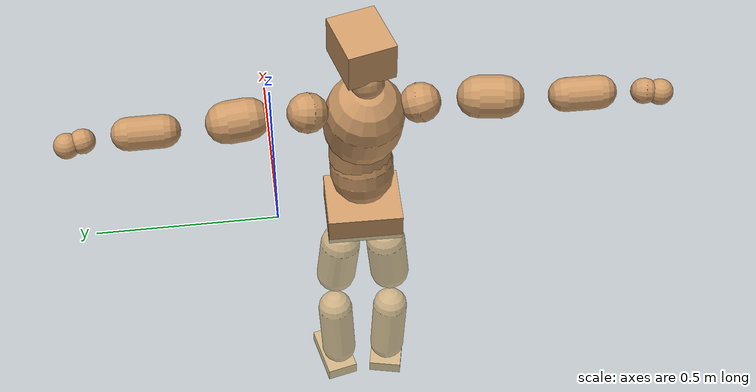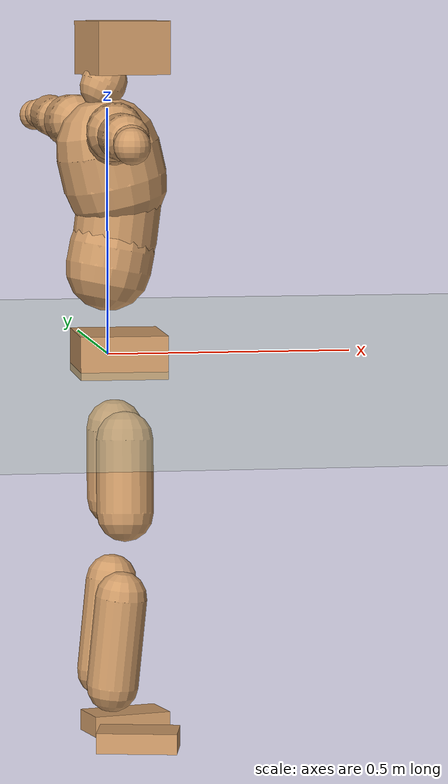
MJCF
<mujoco model="humanoid">
  <compiler coordinate="local" angle="radian"/>
  <default>
    <joint damping="0.0" armature="0.01" stiffness="0.0" limited="true"/>
    <geom conaffinity="1" condim="3" contype="7" margin="0.001" rgba="0.8 0.6 .4 1"/>
  </default>
  <asset>
    <texture type="skybox" builtin="gradient" rgb1=".4 .5 .6" rgb2="0 0 0" width="100" height="100"/>
    <texture builtin="flat" height="1278" mark="cross" markrgb="1 1 1" name="texgeom" random="0.01" rgb1="0.8 0.6 0.4" rgb2="0.8 0.6 0.4" type="cube" width="127"/>
    <texture builtin="checker" height="100" name="texplane" rgb1="0 0 0" rgb2="0.8 0.8 0.8" type="2d" width="100"/>
    <material name="MatPlane" reflectance="0.5" shininess="1" specular="1" texrepeat="60 60" texture="texplane"/>
    <material name="geom" texture="texgeom" texuniform="true"/>
  </asset>
  <worldbody>
    <light cutoff="100" diffuse="1 1 1" dir="-0 0 -1.3" directional="true" exponent="1" pos="0 0 1.3" specular=".1 .1 .1"/>
    <geom conaffinity="1" condim="3" name="floor" pos="0 0 0" rgba="0.8 0.9 0.8 1" size="100 100 .2" type="plane" material="MatPlane"/>
    <body name="Pelvis" pos="-0.0001 -0.2358 0.0324">
      <freejoint name="Pelvis"/>
      <geom type="box" contype="1" conaffinity="1" density="5359.374092" pos="-0.0090 0.0002 -0.0070" size="0.0864 0.1019 0.0426" quat="1.0000 0.0000 0.0000 -0.0087" name="Pelvis"/>
      <body name="L_Hip" pos="-0.0109 0.0559 -0.0763">
        <joint name="L_Hip_x" type="hinge" pos="0 0 0" axis="1 0 0" stiffness="1600" damping="160" armature="0.02" range="-180.0000 180.0000"/>
        <joint name="L_Hip_y" type="hinge" pos="0 0 0" axis="0 1 0" stiffness="1600" damping="160" armature="0.02" range="-180.0000 180.0000"/>
        <joint name="L_Hip_z" type="hinge" pos="0 0 0" axis="0 0 1" stiffness="1600" damping="160" armature="0.02" range="-180.0000 180.0000"/>
        <geom type="capsule" contype="1" conaffinity="1" density="2040.816327" size="0.0563" fromto="0.0013 0.0083 -0.0859 0.0035 0.0221 -0.2293" name="L_Hip"/>
        <body name="L_Knee" pos="0.0049 0.0303 -0.3152">
          <joint name="L_Knee_x" type="hinge" pos="0 0 0" axis="1 0 0" stiffness="1600" damping="160" armature="0.02" range="-180.0000 180.0000"/>
          <joint name="L_Knee_y" type="hinge" pos="0 0 0" axis="0 1 0" stiffness="1600" damping="160" armature="0.02" range="-180.0000 180.0000"/>
          <joint name="L_Knee_z" type="hinge" pos="0 0 0" axis="0 0 1" stiffness="1600" damping="160" armature="0.02" range="-180.0000 180.0000"/>
          <geom type="capsule" contype="1" conaffinity="1" density="1234.567901" size="0.051" fromto="-0.0084 -0.0034 -0.0805 -0.0278 -0.0112 -0.2652" name="L_Knee"/>
          <body name="L_Ankle" pos="-0.0362 -0.0145 -0.3457">
            <joint name="L_Ankle_x" type="hinge" pos="0 0 0" axis="1 0 0" stiffness="1600" damping="160" armature="0.02" range="-180.0000 180.0000"/>
            <joint name="L_Ankle_y" type="hinge" pos="0 0 0" axis="0 1 0" stiffness="1600" damping="160" armature="0.02" range="-180.0000 180.0000"/>
            <joint name="L_Ankle_z" type="hinge" pos="0 0 0" axis="0 0 1" stiffness="1600" damping="160" armature="0.02" range="-180.0000 180.0000"/>
            <geom type="box" contype="1" conaffinity="1" density="999.999978" pos="0.0554 0.0125 -0.0245" size="0.0796 0.0454 0.0208" quat="0.9938 0.0000 0.0000 0.1109" name="L_Ankle"/>
            <body name="L_Toe" pos="0.1108 0.025 -0.049">
              <joint name="L_Toe_x" type="hinge" pos="0 0 0" axis="1 0 0" stiffness="1000" damping="100" armature="0.02" range="-180.0000 180.0000"/>
              <joint name="L_Toe_y" type="hinge" pos="0 0 0" axis="0 1 0" stiffness="1000" damping="100" armature="0.02" range="-180.0000 180.0000"/>
              <joint name="L_Toe_z" type="hinge" pos="0 0 0" axis="0 0 1" stiffness="1000" damping="100" armature="0.02" range="-180.0000 180.0000"/>
              <geom type="box" contype="1" conaffinity="1" density="8239891.411407" pos="0.0000 0.0000 0.0251" size="0.0009 0.0023 0.0011" quat="0.9931 0.0000 0.0000 0.1174" name="L_Toe"/>
            </body>
          </body>
        </body>
      </body>
      <body name="R_Hip" pos="-0.006 -0.0585 -0.0849">
        <joint name="R_Hip_x" type="hinge" pos="0 0 0" axis="1 0 0" stiffness="1600" damping="160" armature="0.02" range="-180.0000 180.0000"/>
        <joint name="R_Hip_y" type="hinge" pos="0 0 0" axis="0 1 0" stiffness="1600" damping="160" armature="0.02" range="-180.0000 180.0000"/>
        <joint name="R_Hip_z" type="hinge" pos="0 0 0" axis="0 0 1" stiffness="1600" damping="160" armature="0.02" range="-180.0000 180.0000"/>
        <geom type="capsule" contype="1" conaffinity="1" density="2040.816327" size="0.0563" fromto="-0.0009 -0.0083 -0.0859 -0.0024 -0.0221 -0.2295" name="R_Hip"/>
        <body name="R_Knee" pos="-0.0033 -0.0304 -0.3154">
          <joint name="R_Knee_x" type="hinge" pos="0 0 0" axis="1 0 0" stiffness="1600" damping="160" armature="0.02" range="-180.0000 180.0000"/>
          <joint name="R_Knee_y" type="hinge" pos="0 0 0" axis="0 1 0" stiffness="1600" damping="160" armature="0.02" range="-180.0000 180.0000"/>
          <joint name="R_Knee_z" type="hinge" pos="0 0 0" axis="0 0 1" stiffness="1600" damping="160" armature="0.02" range="-180.0000 180.0000"/>
          <geom type="capsule" contype="1" conaffinity="1" density="1234.567901" size="0.0513" fromto="-0.0076 0.0042 -0.0809 -0.0243 0.0135 -0.2591" name="R_Knee"/>
          <body name="R_Ankle" pos="-0.0319 0.0177 -0.34">
            <joint name="R_Ankle_x" type="hinge" pos="0 0 0" axis="1 0 0" stiffness="1600" damping="160" armature="0.02" range="-180.0000 180.0000"/>
            <joint name="R_Ankle_y" type="hinge" pos="0 0 0" axis="0 1 0" stiffness="1600" damping="160" armature="0.02" range="-180.0000 180.0000"/>
            <joint name="R_Ankle_z" type="hinge" pos="0 0 0" axis="0 0 1" stiffness="1600" damping="160" armature="0.02" range="-180.0000 180.0000"/>
            <geom type="box" contype="1" conaffinity="1" density="999.99998" pos="0.0580 -0.0128 -0.0264" size="0.0797 0.0481 0.0203" quat="0.9941 0.0000 0.0000 -0.1081" name="R_Ankle"/>
            <body name="R_Toe" pos="0.116 -0.0255 -0.0528">
              <joint name="R_Toe_x" type="hinge" pos="0 0 0" axis="1 0 0" stiffness="1000" damping="100" armature="0.02" range="-180.0000 180.0000"/>
              <joint name="R_Toe_y" type="hinge" pos="0 0 0" axis="0 1 0" stiffness="1000" damping="100" armature="0.02" range="-180.0000 180.0000"/>
              <joint name="R_Toe_z" type="hinge" pos="0 0 0" axis="0 0 1" stiffness="1000" damping="100" armature="0.02" range="-180.0000 180.0000"/>
              <geom type="box" contype="1" conaffinity="1" density="7832218.686866" pos="0.0000 0.0000 0.0268" size="0.0011 0.0024 0.001" quat="0.9952 0.0000 0.0000 -0.0983" name="R_Toe"/>
            </body>
          </body>
        </body>
      </body>
      <body name="Torso" pos="-0.0371 0.0036 0.119">
        <joint name="Torso_x" type="hinge" pos="0 0 0" axis="1 0 0" stiffness="2000" damping="200" armature="0.02" range="-180.0000 180.0000"/>
        <joint name="Torso_y" type="hinge" pos="0 0 0" axis="0 1 0" stiffness="2000" damping="200" armature="0.02" range="-180.0000 180.0000"/>
        <joint name="Torso_z" type="hinge" pos="0 0 0" axis="0 0 1" stiffness="2000" damping="200" armature="0.02" range="-180.0000 180.0000"/>
        <geom type="capsule" contype="1" conaffinity="1" density="2040.816327" size="0.0851" fromto="0.0163 0.0030 0.0835 0.0085 0.0016 0.0434" name="Torso"/>
        <body name="Spine" pos="0.0248 0.0046 0.1268">
          <joint name="Spine_x" type="hinge" pos="0 0 0" axis="1 0 0" stiffness="2000" damping="200" armature="0.02" range="-180.0000 180.0000"/>
          <joint name="Spine_y" type="hinge" pos="0 0 0" axis="0 1 0" stiffness="2000" damping="200" armature="0.02" range="-180.0000 180.0000"/>
          <joint name="Spine_z" type="hinge" pos="0 0 0" axis="0 0 1" stiffness="2000" damping="200" armature="0.02" range="-180.0000 180.0000"/>
          <geom type="capsule" contype="1" conaffinity="1" density="2040.816327" size="0.0832" fromto="0.0098 -0.0035 0.0825 -0.0037 0.0014 -0.0316" name="Spine"/>
          <body name="Chest" pos="0.006 -0.0022 0.0509">
            <joint name="Chest_x" type="hinge" pos="0 0 0" axis="1 0 0" stiffness="2000" damping="200" armature="0.02" range="-180.0000 180.0000"/>
            <joint name="Chest_y" type="hinge" pos="0 0 0" axis="0 1 0" stiffness="2000" damping="200" armature="0.02" range="-180.0000 180.0000"/>
            <joint name="Chest_z" type="hinge" pos="0 0 0" axis="0 0 1" stiffness="2000" damping="200" armature="0.02" range="-180.0000 180.0000"/>
            <geom type="capsule" contype="1" conaffinity="1" density="2040.816327" size="0.103" fromto="-0.0239 -0.0068 0.1000 -0.0084 -0.0024 0.0350" name="Chest"/>
            <body name="Neck" pos="-0.0509 -0.0142 0.1932">
              <joint name="Neck_x" type="hinge" pos="0 0 0" axis="1 0 0" stiffness="1000" damping="100" armature="0.02" range="-180.0000 180.0000"/>
              <joint name="Neck_y" type="hinge" pos="0 0 0" axis="0 1 0" stiffness="1000" damping="100" armature="0.02" range="-180.0000 180.0000"/>
              <joint name="Neck_z" type="hinge" pos="0 0 0" axis="0 0 1" stiffness="1000" damping="100" armature="0.02" range="-180.0000 180.0000"/>
              <geom type="capsule" contype="1" conaffinity="1" density="1000" size="0.0448" fromto="0.0212 0.0048 0.0392 0.0163 0.0036 0.0301" name="Neck"/>
              <body name="Head" pos="0.0375 0.0084 0.0693">
                <joint name="Head_x" type="hinge" pos="0 0 0" axis="1 0 0" stiffness="1000" damping="100" armature="0.02" range="-180.0000 180.0000"/>
                <joint name="Head_y" type="hinge" pos="0 0 0" axis="0 1 0" stiffness="1000" damping="100" armature="0.02" range="-180.0000 180.0000"/>
                <joint name="Head_z" type="hinge" pos="0 0 0" axis="0 0 1" stiffness="1000" damping="100" armature="0.02" range="-180.0000 180.0000"/>
                <geom type="box" contype="1" conaffinity="1" density="2250.000039" pos="0.0198 0.0052 0.0357" size="0.0759 0.0632 0.0524" quat="0.9917 0.0000 0.0000 0.1284" name="Head"/>
              </body>
            </body>
            <body name="L_Thorax" pos="-0.0213 0.0743 0.1058">
              <joint name="L_Thorax_x" type="hinge" pos="0 0 0" axis="1 0 0" stiffness="1000" damping="100" armature="0.02" range="-180.0000 180.0000"/>
              <joint name="L_Thorax_y" type="hinge" pos="0 0 0" axis="0 1 0" stiffness="1000" damping="100" armature="0.02" range="-180.0000 180.0000"/>
              <joint name="L_Thorax_z" type="hinge" pos="0 0 0" axis="0 0 1" stiffness="1000" damping="100" armature="0.02" range="-180.0000 180.0000"/>
              <geom type="capsule" contype="1" conaffinity="1" density="1000" size="0.052" fromto="-0.0114 0.0641 0.0198 -0.0118 0.0660 0.0204" name="L_Thorax"/>
              <body name="L_Shoulder" pos="-0.0232 0.1301 0.0402">
                <joint name="L_Shoulder_x" type="hinge" pos="0 0 0" axis="1 0 0" stiffness="1000" damping="100" armature="0.02" range="-720.0000 720.0000"/>
                <joint name="L_Shoulder_y" type="hinge" pos="0 0 0" axis="0 1 0" stiffness="1000" damping="100" armature="0.02" range="-720.0000 720.0000"/>
                <joint name="L_Shoulder_z" type="hinge" pos="0 0 0" axis="0 0 1" stiffness="1000" damping="100" armature="0.02" range="-720.0000 720.0000"/>
                <geom type="capsule" contype="1" conaffinity="1" density="1000" size="0.0539" fromto="-0.0074 0.0835 -0.0027 -0.0122 0.1379 -0.0045" name="L_Shoulder"/>
                <body name="L_Elbow" pos="-0.0197 0.2214 -0.0072">
                  <joint name="L_Elbow_x" type="hinge" pos="0 0 0" axis="1 0 0" stiffness="1000" damping="100" armature="0.02" range="-720.0000 720.0000"/>
                  <joint name="L_Elbow_y" type="hinge" pos="0 0 0" axis="0 1 0" stiffness="1000" damping="100" armature="0.02" range="-720.0000 720.0000"/>
                  <joint name="L_Elbow_z" type="hinge" pos="0 0 0" axis="0 0 1" stiffness="1000" damping="100" armature="0.02" range="-720.0000 720.0000"/>
                  <geom type="capsule" contype="1" conaffinity="1" density="1000" size="0.042" fromto="-0.0023 0.0719 0.0027 -0.0052 0.1602 0.0060" name="L_Elbow"/>
                  <body name="L_Wrist" pos="-0.0076 0.2321 0.0087">
                    <joint name="L_Wrist_x" type="hinge" pos="0 0 0" axis="1 0 0" stiffness="600" damping="60" armature="0.02" range="-180.0000 180.0000"/>
                    <joint name="L_Wrist_y" type="hinge" pos="0 0 0" axis="0 1 0" stiffness="600" damping="60" armature="0.02" range="-180.0000 180.0000"/>
                    <joint name="L_Wrist_z" type="hinge" pos="0 0 0" axis="0 0 1" stiffness="600" damping="60" armature="0.02" range="-180.0000 180.0000"/>
                    <geom type="capsule" contype="1" conaffinity="1" density="1000" size="0.0315" fromto="-0.0066 0.0381 -0.0045 -0.0069 0.0400 -0.0048" name="L_Wrist"/>
                    <body name="L_Hand" pos="-0.0135 0.0781 -0.0093">
                      <joint name="L_Hand_x" type="hinge" pos="0 0 0" axis="1 0 0" stiffness="600" damping="60" armature="0.02" range="-180.0000 180.0000"/>
                      <joint name="L_Hand_y" type="hinge" pos="0 0 0" axis="0 1 0" stiffness="600" damping="60" armature="0.02" range="-180.0000 180.0000"/>
                      <joint name="L_Hand_z" type="hinge" pos="0 0 0" axis="0 0 1" stiffness="600" damping="60" armature="0.02" range="-180.0000 180.0000"/>
                      <geom type="sphere" contype="1" conaffinity="1" density="1000" size="0.0322" pos="0.0000 0.0000 0.0000" name="L_Hand"/>
                    </body>
                  </body>
                </body>
              </body>
            </body>
            <body name="R_Thorax" pos="-0.0248 -0.0876 0.1059">
              <joint name="R_Thorax_x" type="hinge" pos="0 0 0" axis="1 0 0" stiffness="1000" damping="100" armature="0.02" range="-180.0000 180.0000"/>
              <joint name="R_Thorax_y" type="hinge" pos="0 0 0" axis="0 1 0" stiffness="1000" damping="100" armature="0.02" range="-180.0000 180.0000"/>
              <joint name="R_Thorax_z" type="hinge" pos="0 0 0" axis="0 0 1" stiffness="1000" damping="100" armature="0.02" range="-180.0000 180.0000"/>
              <geom type="capsule" contype="1" conaffinity="1" density="1000" size="0.0518" fromto="-0.0061 -0.0584 0.0207 -0.0063 -0.0603 0.0214" name="R_Thorax"/>
              <body name="R_Shoulder" pos="-0.0123 -0.1188 0.0421">
                <joint name="R_Shoulder_x" type="hinge" pos="0 0 0" axis="1 0 0" stiffness="1000" damping="100" armature="0.02" range="-720.0000 720.0000"/>
                <joint name="R_Shoulder_y" type="hinge" pos="0 0 0" axis="0 1 0" stiffness="1000" damping="100" armature="0.02" range="-720.0000 720.0000"/>
                <joint name="R_Shoulder_z" type="hinge" pos="0 0 0" axis="0 0 1" stiffness="1000" damping="100" armature="0.02" range="-720.0000 720.0000"/>
                <geom type="capsule" contype="1" conaffinity="1" density="1000" size="0.0546" fromto="-0.0099 -0.0841 -0.0006 -0.0171 -0.1451 -0.0010" name="R_Shoulder"/>
                <body name="R_Elbow" pos="-0.027 -0.2292 -0.0016">
                  <joint name="R_Elbow_x" type="hinge" pos="0 0 0" axis="1 0 0" stiffness="1000" damping="100" armature="0.02" range="-720.0000 720.0000"/>
                  <joint name="R_Elbow_y" type="hinge" pos="0 0 0" axis="0 1 0" stiffness="1000" damping="100" armature="0.02" range="-720.0000 720.0000"/>
                  <joint name="R_Elbow_z" type="hinge" pos="0 0 0" axis="0 0 1" stiffness="1000" damping="100" armature="0.02" range="-720.0000 720.0000"/>
                  <geom type="capsule" contype="1" conaffinity="1" density="1000" size="0.0432" fromto="-0.0016 -0.0732 0.0007 -0.0034 -0.1603 0.0014" name="R_Elbow"/>
                  <body name="R_Wrist" pos="-0.005 -0.2335 0.0021">
                    <joint name="R_Wrist_x" type="hinge" pos="0 0 0" axis="1 0 0" stiffness="600" damping="60" armature="0.02" range="-180.0000 180.0000"/>
                    <joint name="R_Wrist_y" type="hinge" pos="0 0 0" axis="0 1 0" stiffness="600" damping="60" armature="0.02" range="-180.0000 180.0000"/>
                    <joint name="R_Wrist_z" type="hinge" pos="0 0 0" axis="0 0 1" stiffness="600" damping="60" armature="0.02" range="-180.0000 180.0000"/>
                    <geom type="capsule" contype="1" conaffinity="1" density="1000" size="0.0329" fromto="-0.0042 -0.0399 -0.0039 -0.0044 -0.0419 -0.0041" name="R_Wrist"/>
                    <body name="R_Hand" pos="-0.0087 -0.0818 -0.0079">
                      <joint name="R_Hand_x" type="hinge" pos="0 0 0" axis="1 0 0" stiffness="600" damping="60" armature="0.02" range="-180.0000 180.0000"/>
                      <joint name="R_Hand_y" type="hinge" pos="0 0 0" axis="0 1 0" stiffness="600" damping="60" armature="0.02" range="-180.0000 180.0000"/>
                      <joint name="R_Hand_z" type="hinge" pos="0 0 0" axis="0 0 1" stiffness="600" damping="60" armature="0.02" range="-180.0000 180.0000"/>
                      <geom type="sphere" contype="1" conaffinity="1" density="1000" size="0.0334" pos="0.0000 0.0000 0.0000" name="R_Hand"/>
                    </body>
                  </body>
                </body>
              </body>
            </body>
          </body>
        </body>
      </body>
    </body>
  </worldbody>
  <actuator>
    <motor name="L_Hip_x" joint="L_Hip_x" gear="500"/>
    <motor name="L_Hip_y" joint="L_Hip_y" gear="500"/>
    <motor name="L_Hip_z" joint="L_Hip_z" gear="500"/>
    <motor name="L_Knee_x" joint="L_Knee_x" gear="500"/>
    <motor name="L_Knee_y" joint="L_Knee_y" gear="500"/>
    <motor name="L_Knee_z" joint="L_Knee_z" gear="500"/>
    <motor name="L_Ankle_x" joint="L_Ankle_x" gear="500"/>
    <motor name="L_Ankle_y" joint="L_Ankle_y" gear="500"/>
    <motor name="L_Ankle_z" joint="L_Ankle_z" gear="500"/>
    <motor name="L_Toe_x" joint="L_Toe_x" gear="500"/>
    <motor name="L_Toe_y" joint="L_Toe_y" gear="500"/>
    <motor name="L_Toe_z" joint="L_Toe_z" gear="500"/>
    <motor name="R_Hip_x" joint="R_Hip_x" gear="500"/>
    <motor name="R_Hip_y" joint="R_Hip_y" gear="500"/>
    <motor name="R_Hip_z" joint="R_Hip_z" gear="500"/>
    <motor name="R_Knee_x" joint="R_Knee_x" gear="500"/>
    <motor name="R_Knee_y" joint="R_Knee_y" gear="500"/>
    <motor name="R_Knee_z" joint="R_Knee_z" gear="500"/>
    <motor name="R_Ankle_x" joint="R_Ankle_x" gear="500"/>
    <motor name="R_Ankle_y" joint="R_Ankle_y" gear="500"/>
    <motor name="R_Ankle_z" joint="R_Ankle_z" gear="500"/>
    <motor name="R_Toe_x" joint="R_Toe_x" gear="500"/>
    <motor name="R_Toe_y" joint="R_Toe_y" gear="500"/>
    <motor name="R_Toe_z" joint="R_Toe_z" gear="500"/>
    <motor name="Torso_x" joint="Torso_x" gear="500"/>
    <motor name="Torso_y" joint="Torso_y" gear="500"/>
    <motor name="Torso_z" joint="Torso_z" gear="500"/>
    <motor name="Spine_x" joint="Spine_x" gear="500"/>
    <motor name="Spine_y" joint="Spine_y" gear="500"/>
    <motor name="Spine_z" joint="Spine_z" gear="500"/>
    <motor name="Chest_x" joint="Chest_x" gear="500"/>
    <motor name="Chest_y" joint="Chest_y" gear="500"/>
    <motor name="Chest_z" joint="Chest_z" gear="500"/>
    <motor name="Neck_x" joint="Neck_x" gear="500"/>
    <motor name="Neck_y" joint="Neck_y" gear="500"/>
    <motor name="Neck_z" joint="Neck_z" gear="500"/>
    <motor name="Head_x" joint="Head_x" gear="500"/>
    <motor name="Head_y" joint="Head_y" gear="500"/>
    <motor name="Head_z" joint="Head_z" gear="500"/>
    <motor name="L_Thorax_x" joint="L_Thorax_x" gear="500"/>
    <motor name="L_Thorax_y" joint="L_Thorax_y" gear="500"/>
    <motor name="L_Thorax_z" joint="L_Thorax_z" gear="500"/>
    <motor name="L_Shoulder_x" joint="L_Shoulder_x" gear="500"/>
    <motor name="L_Shoulder_y" joint="L_Shoulder_y" gear="500"/>
    <motor name="L_Shoulder_z" joint="L_Shoulder_z" gear="500"/>
    <motor name="L_Elbow_x" joint="L_Elbow_x" gear="500"/>
    <motor name="L_Elbow_y" joint="L_Elbow_y" gear="500"/>
    <motor name="L_Elbow_z" joint="L_Elbow_z" gear="500"/>
    <motor name="L_Wrist_x" joint="L_Wrist_x" gear="500"/>
    <motor name="L_Wrist_y" joint="L_Wrist_y" gear="500"/>
    <motor name="L_Wrist_z" joint="L_Wrist_z" gear="500"/>
    <motor name="L_Hand_x" joint="L_Hand_x" gear="500"/>
    <motor name="L_Hand_y" joint="L_Hand_y" gear="500"/>
    <motor name="L_Hand_z" joint="L_Hand_z" gear="500"/>
    <motor name="R_Thorax_x" joint="R_Thorax_x" gear="500"/>
    <motor name="R_Thorax_y" joint="R_Thorax_y" gear="500"/>
    <motor name="R_Thorax_z" joint="R_Thorax_z" gear="500"/>
    <motor name="R_Shoulder_x" joint="R_Shoulder_x" gear="500"/>
    <motor name="R_Shoulder_y" joint="R_Shoulder_y" gear="500"/>
    <motor name="R_Shoulder_z" joint="R_Shoulder_z" gear="500"/>
    <motor name="R_Elbow_x" joint="R_Elbow_x" gear="500"/>
    <motor name="R_Elbow_y" joint="R_Elbow_y" gear="500"/>
    <motor name="R_Elbow_z" joint="R_Elbow_z" gear="500"/>
    <motor name="R_Wrist_x" joint="R_Wrist_x" gear="500"/>
    <motor name="R_Wrist_y" joint="R_Wrist_y" gear="500"/>
    <motor name="R_Wrist_z" joint="R_Wrist_z" gear="500"/>
    <motor name="R_Hand_x" joint="R_Hand_x" gear="500"/>
    <motor name="R_Hand_y" joint="R_Hand_y" gear="500"/>
    <motor name="R_Hand_z" joint="R_Hand_z" gear="500"/>
  </actuator>
  <contact>
    <exclude body1="Torso" body2="Chest"/>
    <exclude body1="Head" body2="Chest"/>
    <exclude body1="R_Knee" body2="R_Toe"/>
    <exclude body1="R_Knee" body2="L_Ankle"/>
    <exclude body1="R_Knee" body2="L_Toe"/>
    <exclude body1="L_Knee" body2="L_Toe"/>
    <exclude body1="L_Knee" body2="R_Ankle"/>
    <exclude body1="L_Knee" body2="R_Toe"/>
    <exclude body1="L_Shoulder" body2="Chest"/>
    <exclude body1="R_Shoulder" body2="Chest"/>
  </contact>
  <sensor/>
  <size njmax="700" nconmax="700"/>
</mujoco>
